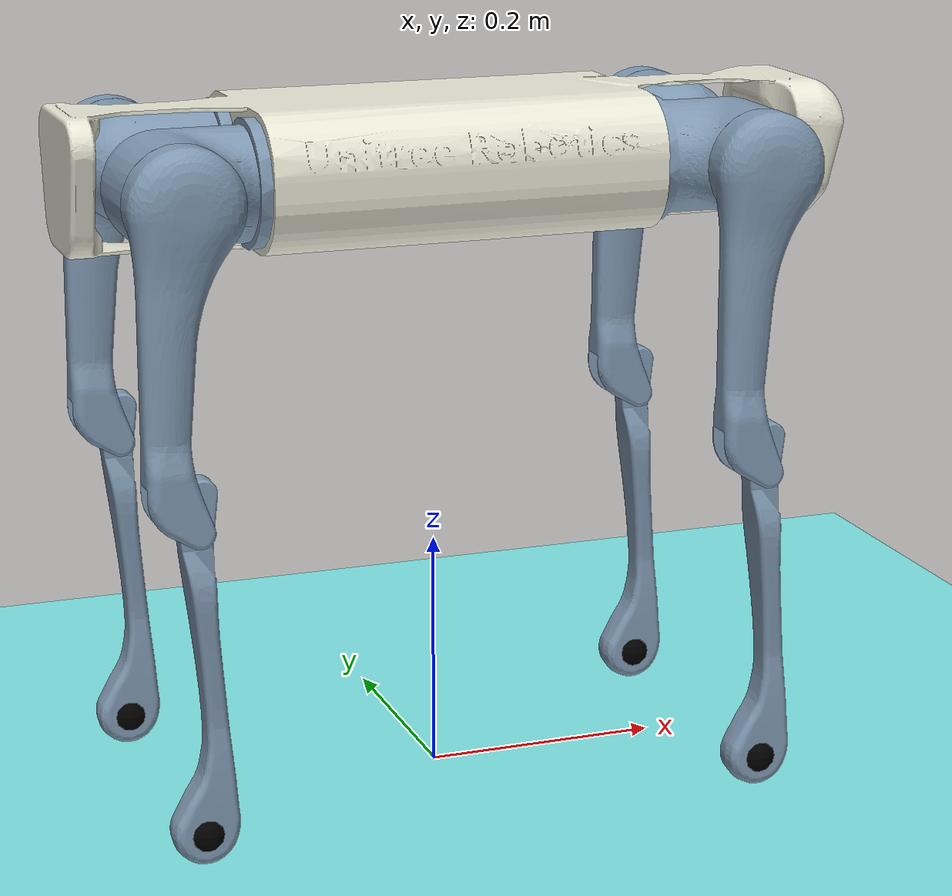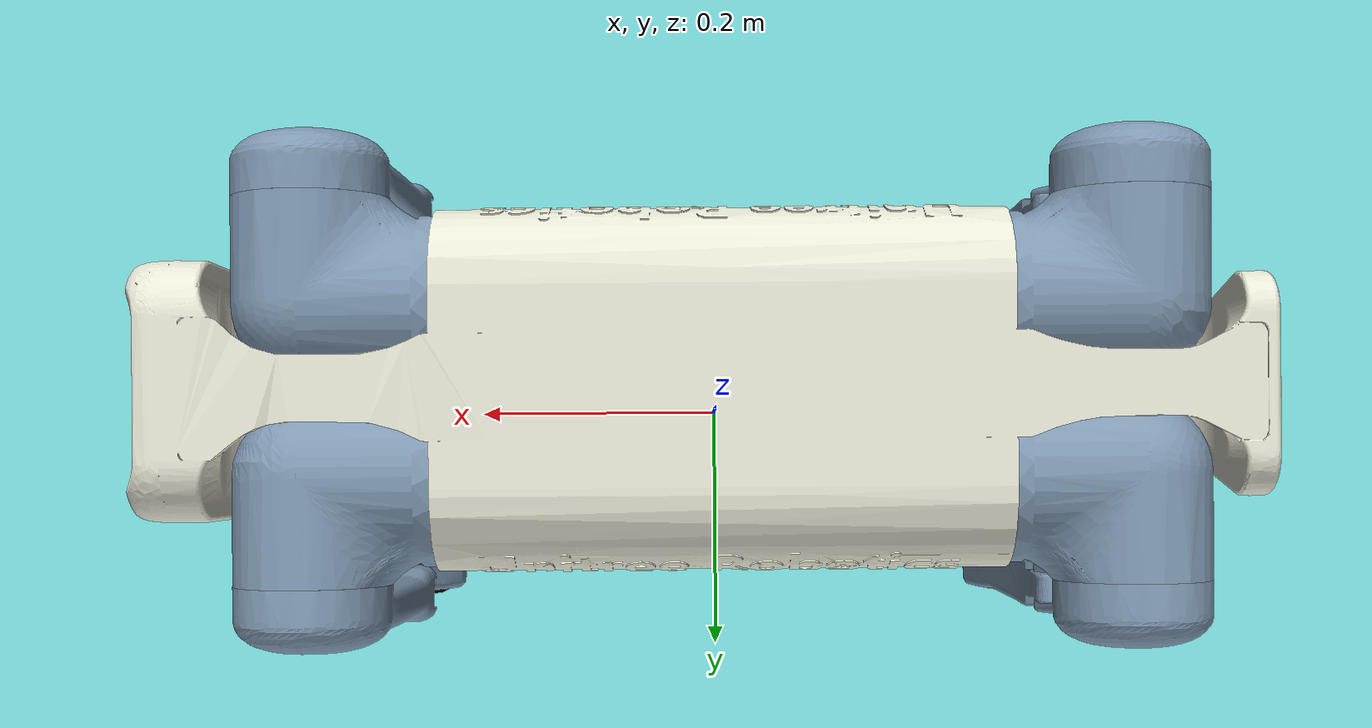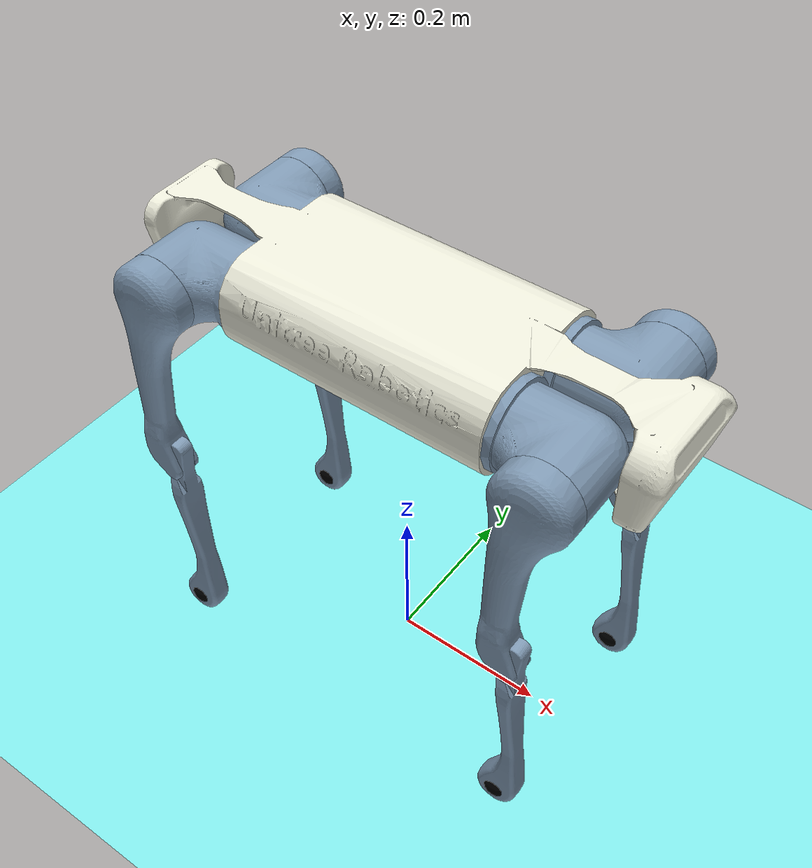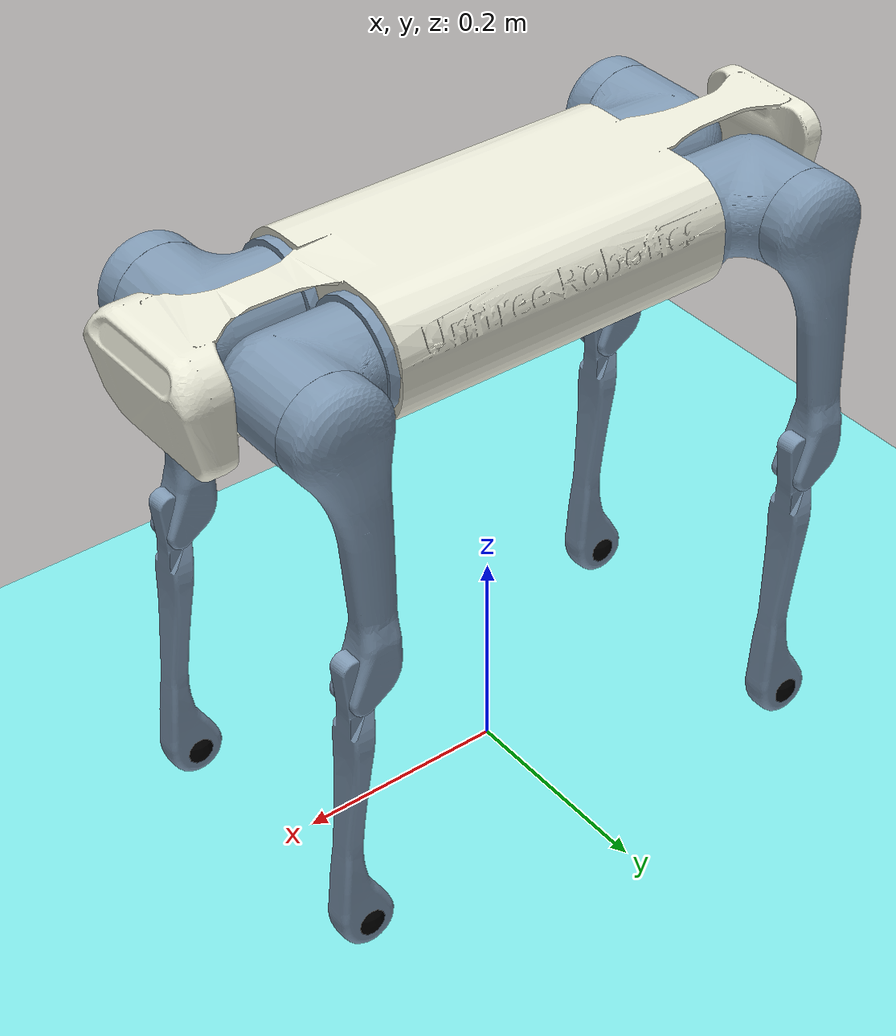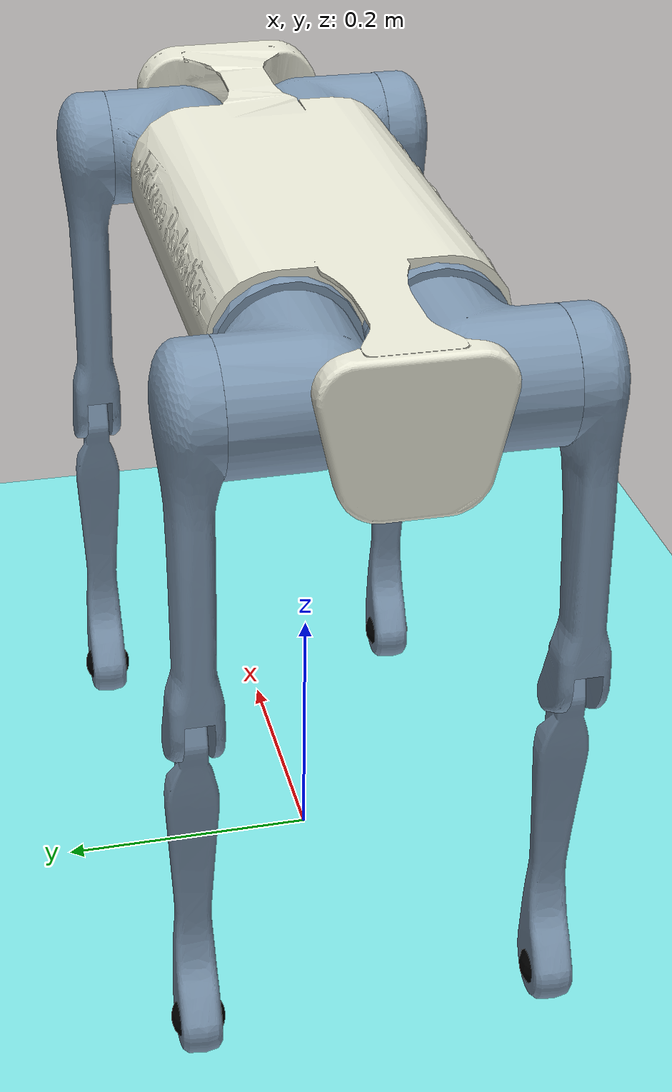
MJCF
<mujoco model="unitree_aliengo">
    <compiler angle="radian" meshdir="../meshes/" />

    <option iterations="50"/>
    <custom>
        <numeric data="0.0 0.0 0.3791 1.0 0.0 0.0 0.0
              -0.01014303 0.65 -1.42
               0.01014303 0.65 -1.42
              -0.01014303 0.65 -1.42
               0.01014303 0.65 -1.42" name="init_qpos"/>
        <numeric data="0" name="matrix_inv_iterations"/>
        <numeric data="20" name="solver_maxls"/>
    </custom>

    <default>
        <geom contype="0" conaffinity="1" condim="3" rgba="0.5 0.6 0.7 1" group="0" />
        <light castshadow="false" diffuse="1 1 1"/>
        <motor ctrlrange="-33.5 33.5" ctrllimited="false"/>
        <camera fovy="60"/>
        <joint damping="0.1" armature="0.01" frictionloss="0.0" />
    </default>

    <asset>
        <mesh name="trunk" file="trunk.stl" />
        <mesh name="hip" file="hip.stl" />
        <mesh name="thigh_mirror" file="thigh_mirror.stl" />
        <mesh name="calf" file="calf.stl" />
        <mesh name="thigh" file="thigh.stl" />
        <texture type="skybox" builtin="gradient" rgb1="1.0 1.0 1.0" rgb2="1.0 1.0 1.0" width="512" height="512"/>
        <texture name="plane" type="2d" builtin="flat" rgb1="1 1 1" rgb2="1 1 1" width="512" height="512" mark="cross" markrgb="0 0 0"/>
        <material name="plane" reflectance="0.0" texture="plane" texrepeat="3 3" texuniform="true"/>
    </asset>

    <visual>
        <rgba com="0.502 1.0 0 0.5" contactforce="0.98 0.4 0.4 0.7" contactpoint="1.0 1.0 0.6 0.4"/>
        <scale com="0.2" forcewidth="0.035" contactwidth="0.10" contactheight="0.04"/>
    </visual>

    <worldbody>
        <light directional="true" diffuse=".8 .8 .8" pos="0 0 10" dir="0 0 -10"/>
        <camera name="track" mode="trackcom" pos="0 -1.3 1.6" xyaxes="1 0 0 0 0.707 0.707"/>
        <geom name='floor' type='plane' contype="1" conaffinity="0" rgba="0.5 0.9 0.9 0.1" material='plane' pos='0 0 0' size='0 0 1'/>

        <body name="trunk" pos="0 0 0.525">
            <inertial pos="0.0116053 0.00442221 0.000106692" quat="0.0111438 0.707126 -0.00935374 0.706938" mass="5.204" diaginertia="0.048560225 0.039700092 0.017580111" />
            <joint name="trunk" type="free" damping="0" armature="0" frictionloss="0"/>
            <geom type="mesh" contype="0" conaffinity="0" group="1" rgba="0.913725 0.913725 0.847059 1" mesh="trunk" />

            <!-- FR Leg -->
            <body name="FR_hip" pos="0.2399 -0.051 0">
                <inertial pos="-0.022191 -0.015144 -1.5e-05" quat="0.0135493 0.706835 -0.0117635 0.707151" mass="1.993" diaginertia="0.00558695 0.00491009 0.00290132" />
                <joint name="FR_hip_joint" pos="0 0 0" axis="1 0 0" />
                <geom quat="0 1 0 0" type="mesh" contype="0" conaffinity="0" group="1" mesh="hip" />

                <body name="FR_thigh" pos="0 -0.083 0">
                    <inertial pos="-0.005607 0.003877 -0.048199" quat="0.694544 -0.0335669 -0.031246 0.717987" mass="0.639" diaginertia="0.0058474 0.00571186 0.000324584" />
                    <joint name="FR_thigh_joint" pos="0 0 0" axis="0 1 0" />
                    <geom type="mesh" contype="0" conaffinity="0" group="1" mesh="thigh_mirror" />

                    <body name="FR_calf" pos="0 0 -0.25">
                        <inertial pos="0.00215606 4.88427e-05 -0.166671" quat="0.707462 0.00517582 0.00535172 0.706712" mass="0.267" diaginertia="0.00690975 0.00689712 5.4885e-05" />
                        <joint name="FR_calf_joint" pos="0 0 0" axis="0 1 0" />
                        <geom type="mesh" contype="0" conaffinity="0" group="1" mesh="calf" />
                        <geom contype="1" conaffinity="0" size="0.008 0.0985" pos="0 0 -0.125" type="capsule" rgba="0 0 0 0" />
                        <geom size="0.02" pos="0 0 -0.25" rgba="0 0 0 1" />
                    </body>
                </body>
            </body>

            <!-- FL Leg -->
            <body name="FL_hip" pos="0.2399 0.051 0">
                <inertial pos="-0.022191 0.015144 -1.5e-05" quat="-0.0135493 0.706835 0.0117635 0.707151" mass="1.993" diaginertia="0.00558695 0.00491009 0.00290132" />
                <joint name="FL_hip_joint" pos="0 0 0" axis="1 0 0" />
                <geom type="mesh" contype="0" conaffinity="0" group="1" mesh="hip" />

                <body name="FL_thigh" pos="0 0.083 0">
                    <inertial pos="-0.005607 -0.003877 -0.048199" quat="0.717987 -0.031246 -0.0335669 0.694544" mass="0.639" diaginertia="0.0058474 0.00571186 0.000324584" />
                    <joint name="FL_thigh_joint" pos="0 0 0" axis="0 1 0" />
                    <geom type="mesh" contype="0" conaffinity="0" group="1" mesh="thigh" />

                    <body name="FL_calf" pos="0 0 -0.25">
                        <inertial pos="0.00215606 4.88427e-05 -0.166671" quat="0.707462 0.00517582 0.00535172 0.706712" mass="0.267" diaginertia="0.00690975 0.00689712 5.4885e-05" />
                        <joint name="FL_calf_joint" pos="0 0 0" axis="0 1 0" />
                        <geom type="mesh" contype="0" conaffinity="0" group="1" mesh="calf" />
                        <geom contype="1" conaffinity="0" size="0.008 0.0985" pos="0 0 -0.125" type="capsule" rgba="0 0 0 0" />
                        <geom size="0.02" pos="0 0 -0.25" rgba="0 0 0 1" />
                    </body>
                </body>
            </body>

            <!-- RR Leg -->
            <body name="RR_hip" pos="-0.2399 -0.051 0">
                <inertial pos="0.022191 -0.015144 -1.5e-05" quat="-0.0117635 0.707151 0.0135493 0.706835" mass="1.993" diaginertia="0.00558695 0.00491009 0.00290132" />
                <joint name="RR_hip_joint" pos="0 0 0" axis="1 0 0" />
                <geom quat="0 0 0 -1" type="mesh" contype="0" conaffinity="0" group="1" mesh="hip" />

                <body name="RR_thigh" pos="0 -0.083 0">
                    <inertial pos="-0.005607 0.003877 -0.048199" quat="0.694544 -0.0335669 -0.031246 0.717987" mass="0.639" diaginertia="0.0058474 0.00571186 0.000324584" />
                    <joint name="RR_thigh_joint" pos="0 0 0" axis="0 1 0" />
                    <geom type="mesh" contype="0" conaffinity="0" group="1" mesh="thigh_mirror" />

                    <body name="RR_calf" pos="0 0 -0.25">
                        <inertial pos="0.00215606 4.88427e-05 -0.166671" quat="0.707462 0.00517582 0.00535172 0.706712" mass="0.267" diaginertia="0.00690975 0.00689712 5.4885e-05" />
                        <joint name="RR_calf_joint" pos="0 0 0" axis="0 1 0" />
                        <geom type="mesh" contype="0" conaffinity="0" group="1" mesh="calf" />
                        <geom contype="1" conaffinity="0" size="0.008 0.0985" pos="0 0 -0.125" type="capsule" rgba="0 0 0 0" />
                        <geom size="0.02" pos="0 0 -0.25" rgba="0 0 0 1" />
                    </body>
                </body>
            </body>

            <!-- RL Leg -->
            <body name="RL_hip" pos="-0.2399 0.051 0">
                <inertial pos="0.022191 0.015144 -1.5e-05" quat="0.0117635 0.707151 -0.0135493 0.706835" mass="1.993" diaginertia="0.00558695 0.00491009 0.00290132" />
                <joint name="RL_hip_joint" pos="0 0 0" axis="1 0 0" />
                <geom quat="0 0 1 0" type="mesh" contype="0" conaffinity="0" group="1" mesh="hip" />

                <body name="RL_thigh" pos="0 0.083 0">
                    <inertial pos="-0.005607 -0.003877 -0.048199" quat="0.717987 -0.031246 -0.0335669 0.694544" mass="0.639" diaginertia="0.0058474 0.00571186 0.000324584" />
                    <joint name="RL_thigh_joint" pos="0 0 0" axis="0 1 0" />
                    <geom type="mesh" contype="0" conaffinity="0" group="1" mesh="thigh" />

                    <body name="RL_calf" pos="0 0 -0.25">
                        <inertial pos="0.00215606 4.88427e-05 -0.166671" quat="0.707462 0.00517582 0.00535172 0.706712" mass="0.267" diaginertia="0.00690975 0.00689712 5.4885e-05" />
                        <joint name="RL_calf_joint" pos="0 0 0" axis="0 1 0" />
                        <geom type="mesh" contype="0" conaffinity="0" group="1" mesh="calf" />
                        <geom contype="1" conaffinity="0" size="0.008 0.0985" pos="0 0 -0.125" type="capsule" rgba="0 0 0 0" />
                        <geom size="0.02" pos="0 0 -0.25" rgba="0 0 0 1" />
                    </body>
                </body>
            </body>
        </body>
    </worldbody>

    <actuator>
        <motor name="FR_hip" gear="1" joint="FR_hip_joint"/>
        <motor name="FR_thigh" gear="1" joint="FR_thigh_joint"/>
        <motor name="FR_calf" gear="1" joint="FR_calf_joint"/>
        <motor name="FL_hip" gear="1" joint="FL_hip_joint"/>
        <motor name="FL_thigh" gear="1" joint="FL_thigh_joint"/>
        <motor name="FL_calf" gear="1" joint="FL_calf_joint"/>
        <motor name="RR_hip" gear="1" joint="RR_hip_joint"/>
        <motor name="RR_thigh" gear="1" joint="RR_thigh_joint"/>
        <motor name="RR_calf" gear="1" joint="RR_calf_joint"/>
        <motor name="RL_hip" gear="1" joint="RL_hip_joint"/>
        <motor name="RL_thigh" gear="1" joint="RL_thigh_joint"/>
        <motor name="RL_calf" gear="1" joint="RL_calf_joint"/>
    </actuator>
</mujoco>
